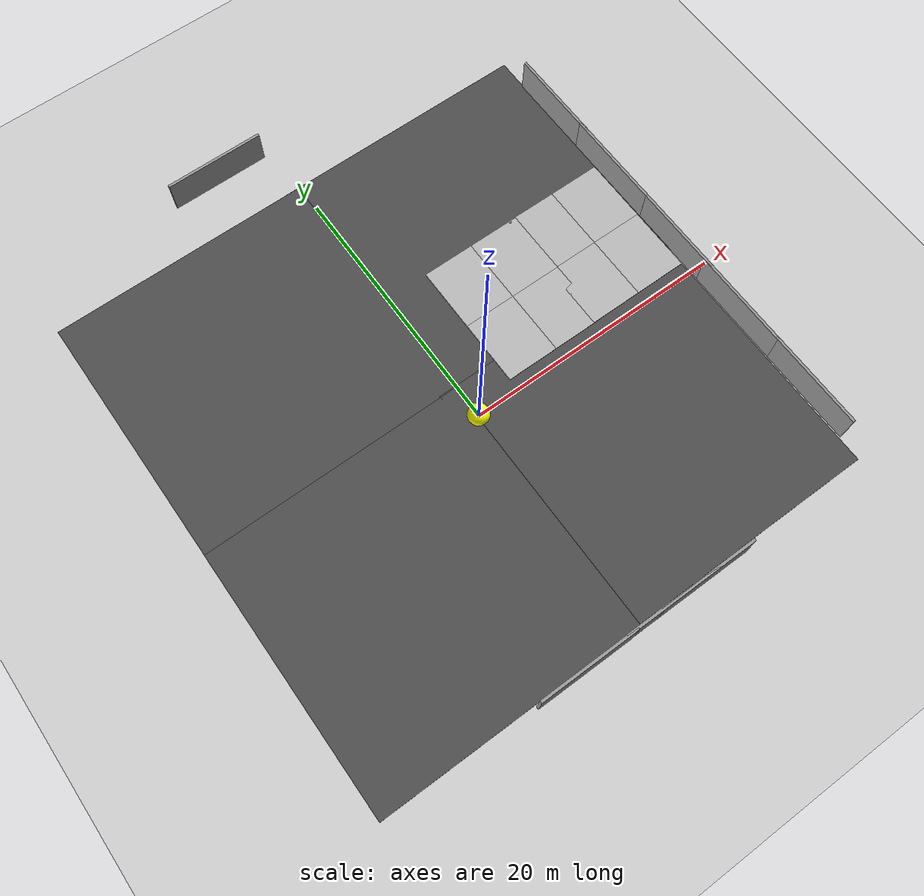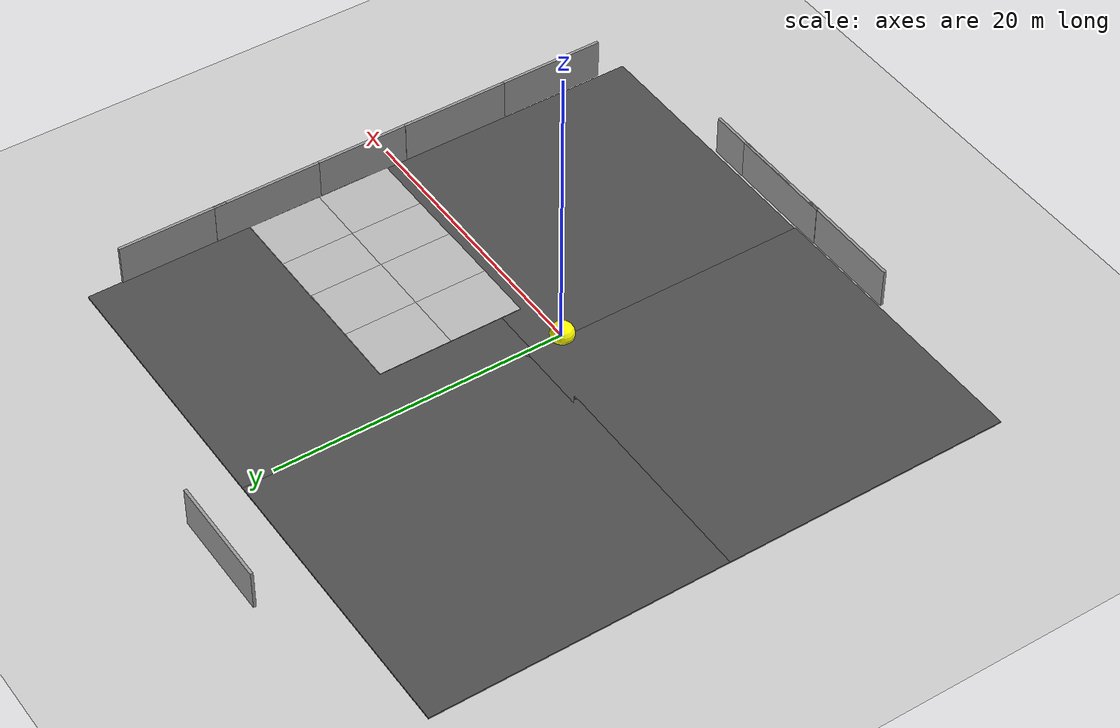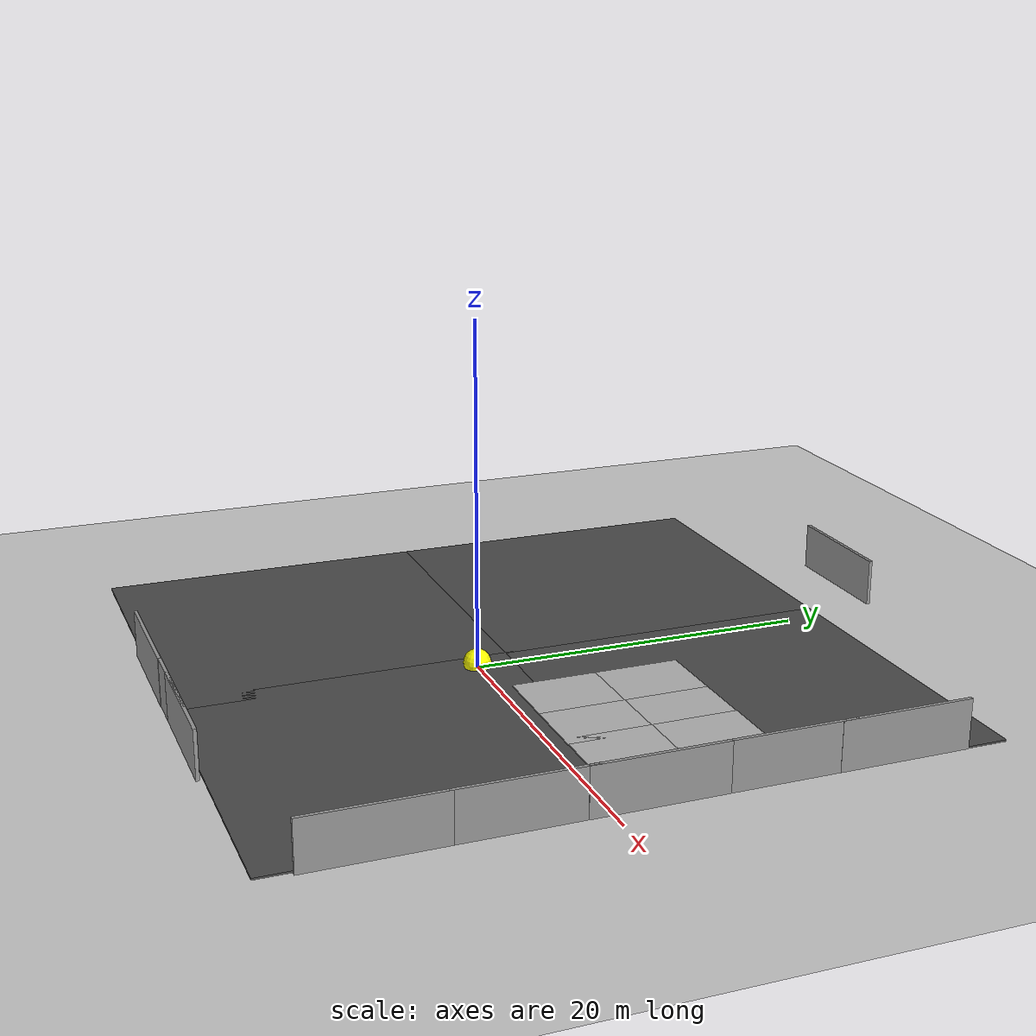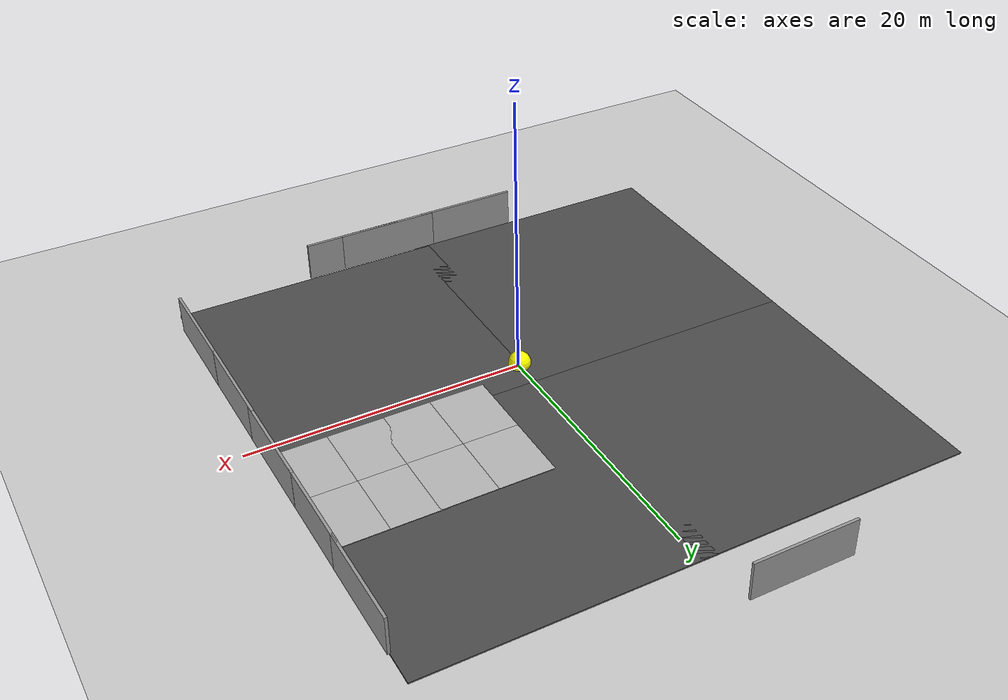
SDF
<sdf version="1.7">
 <world name="default">
  <model name="ground_plane">
   <static>1</static>
   <link name="link">
    <collision name="collision">
     <geometry><plane><normal>0 0 1</normal><size>100 100</size></plane></geometry>
     <surface><friction><ode><mu>100</mu><mu2>50</mu2></ode></friction></surface>
    </collision>
    <visual name="visual">
     <cast_shadows>0</cast_shadows>
     <geometry><plane><normal>0 0 1</normal><size>100 100</size></plane></geometry>
     <material>
      <script><uri>file://media/materials/scripts/gazebo.material</uri><name>Gazebo/Grey</name></script>
     </material>
    </visual>
   </link>
  </model>
  <model name="asphalt_plane">
   <static>1</static>
   <link name="link">
    <collision name="collision">
     <geometry><box><size>20 20 0.1</size></box></geometry>
     <surface><friction><ode><mu>100</mu><mu2>50</mu2></ode></friction></surface>
    </collision>
    <visual name="visual">
     <cast_shadows>0</cast_shadows>
     <geometry><box><size>20 20 0.1</size></box></geometry>
     <material>
      <script>
       <uri>model://asphalt_plane/materials/scripts</uri>
       <uri>model://asphalt_plane/materials/textures</uri>
       <name>vrc/asphalt</name>
      </script>
     </material>
    </visual>
   </link>
   <pose>-10.1692 -7.43707 0 0 -0 0</pose>
  </model>
  <model name="asphalt_plane_clone">
   <static>1</static>
   <link name="link">
    <collision name="collision">
     <geometry><box><size>20 20 0.1</size></box></geometry>
     <surface><friction><ode><mu>100</mu><mu2>50</mu2></ode></friction></surface>
    </collision>
    <visual name="visual">
     <cast_shadows>0</cast_shadows>
     <geometry><box><size>20 20 0.1</size></box></geometry>
     <material>
      <script>
       <uri>model://asphalt_plane/materials/scripts</uri>
       <uri>model://asphalt_plane/materials/textures</uri>
       <name>vrc/asphalt</name>
      </script>
     </material>
    </visual>
   </link>
   <pose>-10.1603 12.171 0 0 -0 0</pose>
  </model>
  <model name="asphalt_plane_clone_clone">
   <static>1</static>
   <link name="link">
    <collision name="collision">
     <geometry><box><size>20 20 0.1</size></box></geometry>
     <surface><friction><ode><mu>100</mu><mu2>50</mu2></ode></friction></surface>
    </collision>
    <visual name="visual">
     <cast_shadows>0</cast_shadows>
     <geometry><box><size>20 20 0.1</size></box></geometry>
     <material>
      <script>
       <uri>model://asphalt_plane/materials/scripts</uri>
       <uri>model://asphalt_plane/materials/textures</uri>
       <name>vrc/asphalt</name>
      </script>
     </material>
    </visual>
   </link>
   <pose>8.71597 12.1785 0 0 -0 0</pose>
  </model>
  <model name="asphalt_plane_clone_clone_0">
   <static>1</static>
   <link name="link">
    <collision name="collision">
     <geometry><box><size>20 20 0.1</size></box></geometry>
     <surface><friction><ode><mu>100</mu><mu2>50</mu2></ode></friction></surface>
    </collision>
    <visual name="visual">
     <cast_shadows>0</cast_shadows>
     <geometry><box><size>20 20 0.1</size></box></geometry>
     <material>
      <script>
       <uri>model://asphalt_plane/materials/scripts</uri>
       <uri>model://asphalt_plane/materials/textures</uri>
       <name>vrc/asphalt</name>
      </script>
     </material>
    </visual>
   </link>
   <pose>8.60996 -7.34898 0 0 -0 0</pose>
  </model>
  <model name="grey_wall">
   <static>1</static>
   <link name="link">
    <pose>0 0 1.4 0 -0 0</pose>
    <collision name="collision"><geometry><box><size>7.5 0.2 2.8</size></box></geometry></collision>
    <visual name="visual">
     <cast_shadows>0</cast_shadows>
     <geometry><box><size>7.5 0.2 2.8</size></box></geometry>
     <material>
      <script>
       <uri>model://grey_wall/materials/scripts</uri>
       <uri>model://grey_wall/materials/textures</uri>
       <name>vrc/grey_wall</name>
      </script>
     </material>
    </visual>
   </link>
   <pose>-4.8114 -17.6626 0 0 -0 0</pose>
  </model>
  <model name="grey_wall_clone">
   <static>1</static>
   <link name="link">
    <pose>0 0 1.4 0 -0 0</pose>
    <collision name="collision"><geometry><box><size>7.5 0.2 2.8</size></box></geometry></collision>
    <visual name="visual">
     <cast_shadows>0</cast_shadows>
     <geometry><box><size>7.5 0.2 2.8</size></box></geometry>
     <material>
      <script>
       <uri>model://grey_wall/materials/scripts</uri>
       <uri>model://grey_wall/materials/textures</uri>
       <name>vrc/grey_wall</name>
      </script>
     </material>
    </visual>
   </link>
   <pose>1.84642 -17.6367 0 0 -0 0</pose>
  </model>
  <model name="grey_wall_clone_0">
   <static>1</static>
   <link name="link">
    <pose>0 0 1.4 0 -0 0</pose>
    <collision name="collision"><geometry><box><size>7.5 0.2 2.8</size></box></geometry></collision>
    <visual name="visual">
     <cast_shadows>0</cast_shadows>
     <geometry><box><size>7.5 0.2 2.8</size></box></geometry>
     <material>
      <script>
       <uri>model://grey_wall/materials/scripts</uri>
       <uri>model://grey_wall/materials/textures</uri>
       <name>vrc/grey_wall</name>
      </script>
     </material>
    </visual>
   </link>
   <pose>4.62088 -17.6372 0 0 -0 0</pose>
  </model>
  <model name="grey_wall_clone_clone">
   <static>1</static>
   <link name="link">
    <pose>0 0 1.4 0 -0 0</pose>
    <collision name="collision"><geometry><box><size>7.5 0.2 2.8</size></box></geometry></collision>
    <visual name="visual">
     <cast_shadows>0</cast_shadows>
     <geometry><box><size>7.5 0.2 2.8</size></box></geometry>
     <material>
      <script>
       <uri>model://grey_wall/materials/scripts</uri>
       <uri>model://grey_wall/materials/textures</uri>
       <name>vrc/grey_wall</name>
      </script>
     </material>
    </visual>
   </link>
   <pose>-4.48764 26.0166 0 0 -0 0</pose>
  </model>
  <model name="grey_wall_clone_clone_clone">
   <static>1</static>
   <link name="link">
    <pose>0 0 1.4 0 -0 0</pose>
    <collision name="collision"><geometry><box><size>7.5 0.2 2.8</size></box></geometry></collision>
    <visual name="visual">
     <cast_shadows>0</cast_shadows>
     <geometry><box><size>7.5 0.2 2.8</size></box></geometry>
     <material>
      <script>
       <uri>model://grey_wall/materials/scripts</uri>
       <uri>model://grey_wall/materials/textures</uri>
       <name>vrc/grey_wall</name>
      </script>
     </material>
    </visual>
   </link>
   <pose>18.7544 16.0387 0 0 0 -1.56734</pose>
  </model>
  <model name="grey_wall_clone_clone_clone_clone">
   <static>1</static>
   <link name="link">
    <pose>0 0 1.4 0 -0 0</pose>
    <collision name="collision"><geometry><box><size>7.5 0.2 2.8</size></box></geometry></collision>
    <visual name="visual">
     <cast_shadows>0</cast_shadows>
     <geometry><box><size>7.5 0.2 2.8</size></box></geometry>
     <material>
      <script>
       <uri>model://grey_wall/materials/scripts</uri>
       <uri>model://grey_wall/materials/textures</uri>
       <name>vrc/grey_wall</name>
      </script>
     </material>
    </visual>
   </link>
   <pose>18.767 9.41754 0 0 0 -1.56734</pose>
  </model>
  <model name="grey_wall_clone_clone_clone_clone_0">
   <static>1</static>
   <link name="link">
    <pose>0 0 1.4 0 -0 0</pose>
    <collision name="collision"><geometry><box><size>7.5 0.2 2.8</size></box></geometry></collision>
    <visual name="visual">
     <cast_shadows>0</cast_shadows>
     <geometry><box><size>7.5 0.2 2.8</size></box></geometry>
     <material>
      <script>
       <uri>model://grey_wall/materials/scripts</uri>
       <uri>model://grey_wall/materials/textures</uri>
       <name>vrc/grey_wall</name>
      </script>
     </material>
    </visual>
   </link>
   <pose>18.7963 2.45369 0 0 0 -1.56734</pose>
  </model>
  <model name="grey_wall_clone_clone_clone_clone_1">
   <static>1</static>
   <link name="link">
    <pose>0 0 1.4 0 -0 0</pose>
    <collision name="collision"><geometry><box><size>7.5 0.2 2.8</size></box></geometry></collision>
    <visual name="visual">
     <cast_shadows>0</cast_shadows>
     <geometry><box><size>7.5 0.2 2.8</size></box></geometry>
     <material>
      <script>
       <uri>model://grey_wall/materials/scripts</uri>
       <uri>model://grey_wall/materials/textures</uri>
       <name>vrc/grey_wall</name>
      </script>
     </material>
    </visual>
   </link>
   <pose>18.8058 -4.41342 0 0 0 -1.56734</pose>
  </model>
  <model name="grey_wall_clone_clone_clone_clone_2">
   <static>1</static>
   <link name="link">
    <pose>0 0 1.4 0 -0 0</pose>
    <collision name="collision"><geometry><box><size>7.5 0.2 2.8</size></box></geometry></collision>
    <visual name="visual">
     <cast_shadows>0</cast_shadows>
     <geometry><box><size>7.5 0.2 2.8</size></box></geometry>
     <material>
      <script>
       <uri>model://grey_wall/materials/scripts</uri>
       <uri>model://grey_wall/materials/textures</uri>
       <name>vrc/grey_wall</name>
      </script>
     </material>
    </visual>
   </link>
   <pose>18.8343 -11.7301 0 0 0 -1.56734</pose>
  </model>
  <model name="mud_box">
   <static>1</static>
   <link name="link">
    <collision name="collision"><geometry><box><size>8 10 0.2</size></box></geometry></collision>
    <visual name="visual_1">
     <pose>-2 2.5 0 0 -0 0</pose>
     <cast_shadows>0</cast_shadows>
     <geometry><box><size>4 5 0.2</size></box></geometry>
     <material>
      <script>
       <uri>model://mud_box/materials/scripts</uri>
       <uri>model://mud_box/materials/textures</uri>
       <name>vrc/mud</name>
      </script>
     </material>
    </visual>
    <visual name="visual_2">
     <pose>2 2.5 0 0 -0 0</pose>
     <cast_shadows>0</cast_shadows>
     <geometry><box><size>4 5 0.2</size></box></geometry>
     <material>
      <script>
       <uri>model://mud_box/materials/scripts</uri>
       <uri>model://mud_box/materials/textures</uri>
       <name>vrc/mud</name>
      </script>
     </material>
    </visual>
    <visual name="visual_3">
     <pose>2 -2.5 0 0 -0 0</pose>
     <cast_shadows>0</cast_shadows>
     <geometry><box><size>4 5 0.2</size></box></geometry>
     <material>
      <script>
       <uri>model://mud_box/materials/scripts</uri>
       <uri>model://mud_box/materials/textures</uri>
       <name>vrc/mud</name>
      </script>
     </material>
    </visual>
    <visual name="visual_4">
     <pose>-2 -2.5 0 0 -0 0</pose>
     <cast_shadows>0</cast_shadows>
     <geometry><box><size>4 5 0.2</size></box></geometry>
     <material>
      <script>
       <uri>model://mud_box/materials/scripts</uri>
       <uri>model://mud_box/materials/textures</uri>
       <name>vrc/mud</name>
      </script>
     </material>
    </visual>
   </link>
   <pose>14.6137 5.86275 0 0 -0 0</pose>
  </model>
  <model name="mud_box_clone">
   <static>1</static>
   <link name="link">
    <collision name="collision"><geometry><box><size>8 10 0.2</size></box></geometry></collision>
    <visual name="visual_1">
     <pose>-2 2.5 0 0 -0 0</pose>
     <cast_shadows>0</cast_shadows>
     <geometry><box><size>4 5 0.2</size></box></geometry>
     <material>
      <script>
       <uri>model://mud_box/materials/scripts</uri>
       <uri>model://mud_box/materials/textures</uri>
       <name>vrc/mud</name>
      </script>
     </material>
    </visual>
    <visual name="visual_2">
     <pose>2 2.5 0 0 -0 0</pose>
     <cast_shadows>0</cast_shadows>
     <geometry><box><size>4 5 0.2</size></box></geometry>
     <material>
      <script>
       <uri>model://mud_box/materials/scripts</uri>
       <uri>model://mud_box/materials/textures</uri>
       <name>vrc/mud</name>
      </script>
     </material>
    </visual>
    <visual name="visual_3">
     <pose>2 -2.5 0 0 -0 0</pose>
     <cast_shadows>0</cast_shadows>
     <geometry><box><size>4 5 0.2</size></box></geometry>
     <material>
      <script>
       <uri>model://mud_box/materials/scripts</uri>
       <uri>model://mud_box/materials/textures</uri>
       <name>vrc/mud</name>
      </script>
     </material>
    </visual>
    <visual name="visual_4">
     <pose>-2 -2.5 0 0 -0 0</pose>
     <cast_shadows>0</cast_shadows>
     <geometry><box><size>4 5 0.2</size></box></geometry>
     <material>
      <script>
       <uri>model://mud_box/materials/scripts</uri>
       <uri>model://mud_box/materials/textures</uri>
       <name>vrc/mud</name>
      </script>
     </material>
    </visual>
   </link>
   <pose>7.23773 5.83307 0 0 -0 0</pose>
  </model>
  <model name="street_light">
   <pose>-0.062016 -0.001983 0.28523 0 -0 0</pose>
   <static>1</static>
   <link name="base_link">
    <visual name="visual">
     <geometry><sphere><radius>0.8</radius></sphere></geometry>
     <material>
      <lighting>1</lighting>
      <ambient>0.1 0.1 0.1 1</ambient>
      <diffuse>1 1 0 1</diffuse>
      <emissive>1 1 1 1</emissive>
      <specular>0.1 0.1 0.1 1</specular>
      <shader type="vertex"><normal_map>gazebo/NormalMap</normal_map></shader>
     </material>
    </visual>
   </link>
   <plugin name="light_plugin" filename="liblight_plugin.so">
    <light>
     <type>point</type>
     <diffuse>1.0 1.0 0.0 1.0</diffuse>
     <specular>1.0 1.0 1.0 1.0</specular>
     <attenuation>
      <range>20.0</range>
      <constant>0.5</constant>
      <linear>0.1</linear>
      <quadratic>0.01</quadratic>
     </attenuation>
    </light>
    <link>base_link</link>
   </plugin>
  </model>
  <gravity>0 0 -19.6</gravity>
  <magnetic_field>6e-06 2.3e-05 -4.2e-05</magnetic_field>
  <atmosphere type="adiabatic"/>
  <physics name="default_physics" default="0" type="ode">
   <max_step_size>0.001</max_step_size>
   <real_time_factor>1</real_time_factor>
   <real_time_update_rate>1000</real_time_update_rate>
  </physics>
  <scene><ambient>0.4 0.4 0.4 1</ambient><background>0.7 0.7 0.7 1</background><shadows>1</shadows></scene>
  <audio><device>default</device></audio>
  <spherical_coordinates>
   <surface_model>EARTH_WGS84</surface_model>
   <latitude_deg>47.8406</latitude_deg>
   <longitude_deg>10.6199</longitude_deg>
   <elevation>740</elevation>
   <heading_deg>180</heading_deg>
  </spherical_coordinates>
  <light name="user_point_light_0" type="point">
   <pose>-0.032046 -0.000109 1 0 -0 0</pose>
   <diffuse>0.5 0.5 0.5 1</diffuse>
   <specular>0.1 0.1 0.1 1</specular>
   <attenuation>
    <range>20</range>
    <constant>0.5</constant>
    <linear>0.01</linear>
    <quadratic>0.001</quadratic>
   </attenuation>
   <cast_shadows>0</cast_shadows>
   <direction>0 0 -1</direction>
  </light>
 </world>
</sdf>
